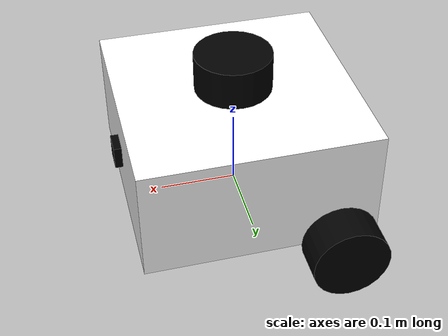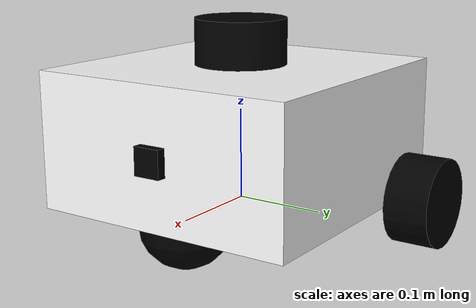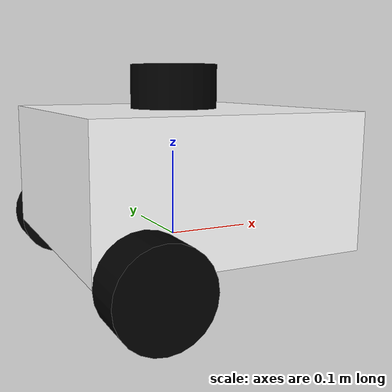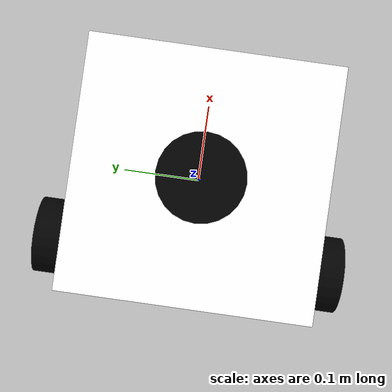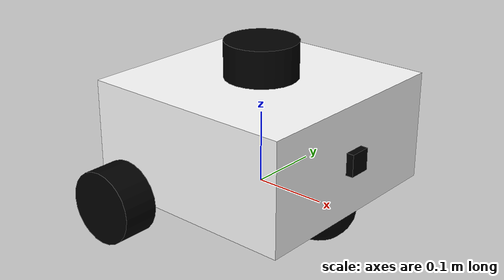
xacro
<?xml version="1.0"?>
<robot xmlns:xacro="http://www.ros.org/wiki/xacro"  name="robot">

    <xacro:include filename="robot.core.xacro"/>

    <xacro:include filename="ros2_control.xacro"/>

    <xacro:include filename="lidar.xacro"/>

    <xacro:include filename="camera.xacro"/>

</robot>

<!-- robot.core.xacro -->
<robot xmlns:xacro="http://www.ros.org/wiki/xacro">

    <xacro:include filename="inertial_macros.xacro"/>

    <material name="black">
        <color rgba="0 0 0 1"/>
    </material>

    <material name="white">
        <color rgba="1 1 1 1"/>
    </material>

    <material name="orange">
        <color rgba="0.5 0.5 0 1"/>
    </material>

    <material name="blue">
        <color rgba="0 0 1 1"/>
    </material>

    <material name="green">
        <color rgba="0 1 0 1"/>
    </material>

    <link name="base_link"></link>
    <joint name="chassis_joint" type="fixed"> <!-- joint定义的xyz值描述的是如何从父link的坐标系移动到子link的坐标系，xyz值表示子link的原点相对于父link原点的位置 -->
        <parent link="base_link"/>
        <child link="chassis_link"/>
        <origin xyz="-0.1 0 0"/> <!-- 在base_link坐标系下定义关节中心点的xyz坐标位置，方便底盘、轮子的中心点与这个关节连接-->
    </joint>

    <link name="chassis_link">
        <visual>
            <geometry>
                <box size="0.3 0.3 0.15"/> <!-- 长宽高 -->
            </geometry>
            <material name="white"/>
            <origin xyz="0.1 0 0.075"/>
        </visual>
        <collision> <!-- collision标签用于描述碰撞检测的形状，通常和visual标签中的形状一致，但是collision标签中的形状不会被渲染,通常应该保留 origin 标签 -->
            <geometry>
                <box size="0.3 0.3 0.15"/>
            </geometry>
            <origin xyz="0.1 0 0.075"/>
        </collision>
        <xacro:inertial_box mass="0.5" x="0.3" y="0.3" z="0.15"> <!-- 引用惯性标签-->
            <origin xyz="0.1 0 0.075"/>
        </xacro:inertial_box>
    </link>

    <gazebo reference="chassis_link">
        <material>Gazebo/White</material>
    </gazebo>

    <joint name="left_wheel_joint" type="continuous"> <!-- chassis和wheel都以base_link为父坐标，当然wheel也可以以chassis为父连接，选择base_link减少了层级结构，使URDF或类似文件更加简洁 -->
        <parent link="base_link"/>
        <child link="left_wheel_link"/>
        <origin xyz="-0.1 0.175 0"  rpy="-${pi/2} 0 0"/>   <!-- 需要旋转坐标调整位姿的情况，也可以用link origin来替换，添加axis只能在joint内, 旋转方向不可以相反，joint_state控制轮子运动的方向相反 -->
        <axis xyz="0 0 1"/> <!-- 旋转轴，仅存在于joint标签内 -->
    </joint>

    <link name="left_wheel_link">
        <visual>
            <geometry>
                <cylinder radius="0.05" length="0.05"/>  <!-- 半径 高度 -->
            </geometry>
            <material name="black"/>
        </visual>
        <collision>
            <geometry>
                <cylinder radius="0.05" length="0.05"/>  <!-- 半径 高度 -->
            </geometry>
            <material name="black"/>
        </collision>
        <xacro:inertial_cylinder mass="0.1" radius="0.05" length="0.05">
            <origin xyz="0 0 0" rpy="0 0 0"/>
        </xacro:inertial_cylinder>
    </link>

    <gazebo reference="left_wheel_link">
        <material>Gazebo/Blue</material>
    </gazebo>

    <joint name="right_wheel_joint" type="continuous">
        <parent link="base_link"/>
        <child link="right_wheel_link"/>
        <origin xyz="-0.1 -0.175 0"  rpy="-${pi/2} 0 0"/>   <!-- 需要和left wheel旋转方向相反吗？哪怕结果一样也必须按照相反的方向旋转？ -->
        <axis xyz="0 0 1"/>
    </joint>

    <link name="right_wheel_link">
        <visual>
            <geometry>
                <cylinder radius="0.05" length="0.05"/>
            </geometry>
            <material name="black"/>
        </visual>
        <collision>
            <geometry>
                <cylinder radius="0.05" length="0.05"/>
            </geometry>
            <material name="black"/>
        </collision>
        <xacro:inertial_cylinder mass="0.1" radius="0.05" length="0.05">
            <origin xyz="0 0 0" rpy="0 0 0"/>
        </xacro:inertial_cylinder>
    </link>  <!-- 在rivz2种，这个机器人底座紧贴着grid上，轮子都嵌入进grid了，是不影响这个移动小车的功能使用吗？完全可以调节grid的高度？还是说是有问题的？-->

    <gazebo reference="right_wheel_link">
        <material>Gazebo/Blue</material>
    </gazebo>

    <joint name="caster_wheel_joint" type="fixed">
        <parent link="base_link"/>
        <child link="caster_wheel_link"/>
        <origin xyz="0.1 0 0"/>
    </joint>

    <link name="caster_wheel_link">
        <visual>
            <geometry>
                <sphere radius="0.05"/>
            </geometry>
            <material name="black"/>
        </visual>
        <collision>
            <geometry>
                <sphere radius="0.05"/>
            </geometry>
            <material name="black"/>
        </collision>
        <xacro:inertial_sphere mass="0.1" radius="0.05">
            <origin xyz="0 0 0" rpy="0 0 0"/>
        </xacro:inertial_sphere>
    </link>

    <gazebo reference="caster_wheel_link">
        <material>Gazebo/Black</material>
        <mu1 value="0.001"/>
        <mu2 value="0.001"/>
    </gazebo>
</robot>

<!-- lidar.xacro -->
<robot xmlns:xacro="http://www.ros.org/wiki/xacro">

    <joint name="laser_joint" type="fixed">
        <parent link="chassis_link" />
        <child link="laser_link" />
        <origin xyz="0.1 0 0.175"/>
    </joint>

    <link name="laser_link">
        <visual>
            <geometry>
                <cylinder radius="0.05" length="0.05"/>
            </geometry>
            <material name="black"/>
        </visual>
        <collision>
            <geometry>
                <cylinder radius="0.05" length="0.05"/>
            </geometry>
            <material name="black"/>
        </collision>
        <xacro:inertial_cylinder mass="0.1" radius="0.05" length="0.05">
            <origin xyz="0 0 0" rpy="0 0 0"/>
        </xacro:inertial_cylinder>
    </link>

    <gazebo reference="laser_link">
        <material>Gazebo/Black</material>
        <sensor name="laser" type="ray">
            <pose> 0 0 0 0 0 0 </pose> <!-- 定义了相对于laser_link坐标系的位置和方向-->
            <visualize>true</visualize> <!-- 定义了可视化蓝色的激光线条 -->
            <update_rate>10</update_rate>
            <ray> <!-- 模拟激光雷达参数-->
                <scan>
                    <horizontal>
                        <samples>360</samples> <!-- 每次扫描360个采样点-->
                        <min_angle>-3.14</min_angle> <!--定义扫描范围为整圆（-π到π弧度）-->
                        <max_angle>3.14</max_angle>
                    </horizontal>
                </scan>
                <range>
                    <min>0.3</min>
                    <max>12</max>
                </range>
            </ray>
            <plugin name="laser_controller" filename="libgazebo_ros_ray_sensor.so"> <!-- 定义用于ROS接口的插件-->
                <ros>
                    <argument>~/out:=scan</argument>
                </ros>
                <output_type>sensor_msgs/LaserScan</output_type> <!-- 指定输出消息类型-->
                <frame_name>laser_link</frame_name> <!--指定激光数据的坐标系-->
            </plugin>
        </sensor>
    </gazebo>

</robot>

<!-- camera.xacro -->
<robot xmlns:xacro="http://www.ros.org/wiki/xacro">

    <joint name="camera_joint" type="fixed">
        <parent link="chassis_link" />
        <child link="camera_link" />
        <origin xyz="0.255 0 0.075"/>
    </joint>

    <link name="camera_link">
        <visual>
            <geometry>
                <box size="0.010 0.03 0.03"/>
            </geometry>
            <material name="black"/>
        </visual> <!--虽然可以保留所有的视觉、碰撞和惯性组件，但由于摄像头非常小不突出并且直接固定在底盘上，因此选择去除碰撞和惯性组件，仅保留视觉组件-->
        <collision>
            <geometry>
                <box size="0.01 0.03 0.03"/>
            </geometry>
            <material name="black"/>
        </collision>
    </link>

    <joint name="camera_optical_joint" type="fixed">
        <parent link="camera_link"/>
        <child link="camera_optical_link"/>
        <origin xyz="0 0 0" rpy="${-pi/2} 0 ${-pi/2}"/>
    </joint>

    <link name="camera_optical_link"></link> <!-- 看不见的相机光学link-->

    <gazebo reference="camera_link">
        <material>Gazebo/Black</material>
        <sensor name="camera" type="camera">
            <pose> 0 0 0 0 0 0 </pose>
            <visualize>true</visualize>
            <update_rate>10</update_rate>
            <camera>
                <horizontal_fov>1.089</horizontal_fov>
                <image>
                    <width>640</width>
                    <height>480</height>
                    <format>R8G8B8</format>
                </image>
                <clip>
                    <near>0.05</near>
                    <far>8.0</far>
                </clip>
            </camera>
            <plugin name="camera_controller" filename="libgazebo_ros_camera.so">
                <frame_name>camera_optical_link</frame_name> <!--指定光学图片数据（非相机）的坐标系-->
            </plugin>
        </sensor>
    </gazebo>

</robot>
